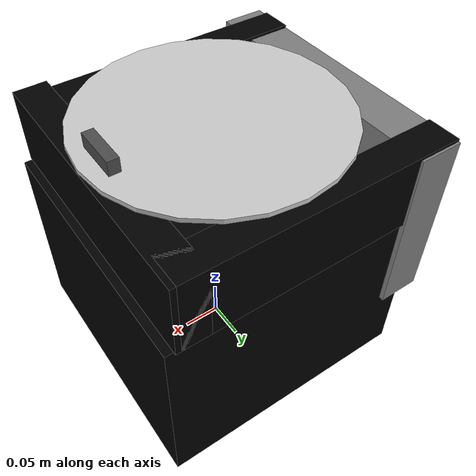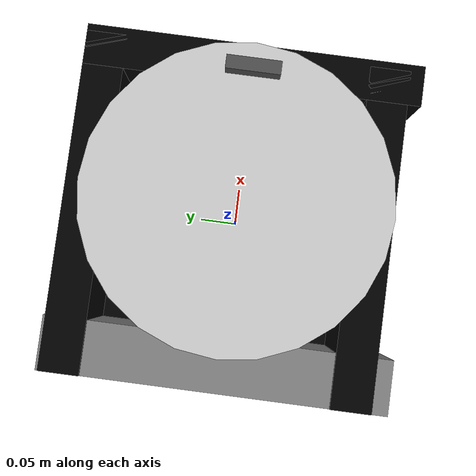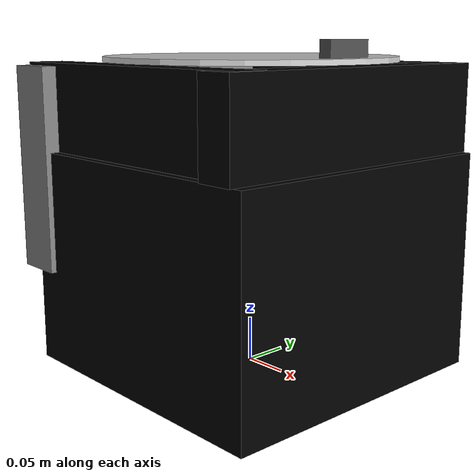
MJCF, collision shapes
<mujoco model="CoaterMSC150T">

  <compiler angle="radian" meshdir="../../assets" />

  <option gravity="0 0 -9.81" />

  <asset>

    <mesh name="coater_msc150t_mesh" file="CoaterMSC150T/base.obj" scale="0.210000 0.210000 0.210000" />
  </asset>

  <worldbody>
    <body name="coater_msc150t" quat="0.7071 0.7071 0 0">

      <geom name="coater_msc150t_visual" type="mesh" mesh="coater_msc150t_mesh" contype="0" rgba="0.3 0.3 0.3 1" conaffinity="0" />
      <geom name="rotate_origin" type="box" size="0.007000 0.007000 0.007000" pos="-0.161000 0.350000 -0.001540" density="2500" contype="0" conaffinity="0" rgba="0 0 0 0" />

      <body name="coater_msc150t_lid" pos="0.000000 0.000000 0.000000" quat="1 0 0 0">
        <joint name="coater_msc150t_lid_hinge" type="hinge" pos="-0.161000 0.350000 -0.001540" axis="0 0 1" range="-0 1.5" limited="true" damping="0.2" />
        <geom name="handle" type="box" size="0.007000 0.011900 0.028000" pos="0.133000 0.357000 0.000000" density="2500" contype="1" conaffinity="1" rgba="0.3 0.3 0.3 1" />

         <site name="lid_handle_grasp_site" type="sphere" pos="0.133000 0.357000 0.000000" quat="1 0 0 0" size="0.010500" rgba="0 0 0 0" />

        <geom type="cylinder" size="0.161000 0.002800" pos="-0.000000 0.347900 -0.000000" euler="1.5708 0 0" contype="1" conaffinity="1" friction="0.6 0.2 0.001" density="2500" rgba="0.8 0.8 0.8 0.4" />
      </body>

      <geom name="coater_msc150t_collision" type="mesh" mesh="coater_msc150t_mesh" rgba="0.5 0.5 0.5 1" contype="0" conaffinity="0" friction="1.0 0.3 0.001" />
      <geom name="box_1" type="box" size="0.171500 0.122500 0.171500" pos="0.000000 0.122500 0.000000" density="4500" contype="1" conaffinity="1" rgba="0 0 0 0" />
      <geom name="box_2" type="box" size="0.028000 0.115500 0.177800" pos="-0.168000 0.224000 0.000000" density="4500" contype="1" conaffinity="1" rgba="0.5 0.5 0.5 1" />
      <geom name="box_3" type="box" size="0.175000 0.049000 0.021000" pos="-0.021000 0.294000 0.140000" density="4500" contype="1" conaffinity="1" rgba="0 0 0 0" />
      <geom name="box_4" type="box" size="0.175000 0.049000 0.021000" pos="-0.021000 0.294000 -0.154000" density="4500" contype="1" conaffinity="1" rgba="0 0 0 0" />
      <geom name="box_5" type="box" size="0.021000 0.049000 0.175000" pos="0.140000 0.294000 -0.000000" density="4500" contype="1" conaffinity="1" rgba="0 0 0 0" />
      <geom name="table" type="cylinder" size="0.030100 0.021000" pos="0.000000 0.254100 -0.012600" euler="1.5708 0 0" contype="1" conaffinity="1" friction="0.6 0.2 0.001" density="2500" rgba="0 0 0 0" />

    </body>
  </worldbody>
   <actuator>
    <position name="coater_msc150t_lid_ctrl" joint="coater_msc150t_lid_hinge" kp="20" ctrlrange="0 1.57" ctrllimited="true" />
  </actuator>
</mujoco>
